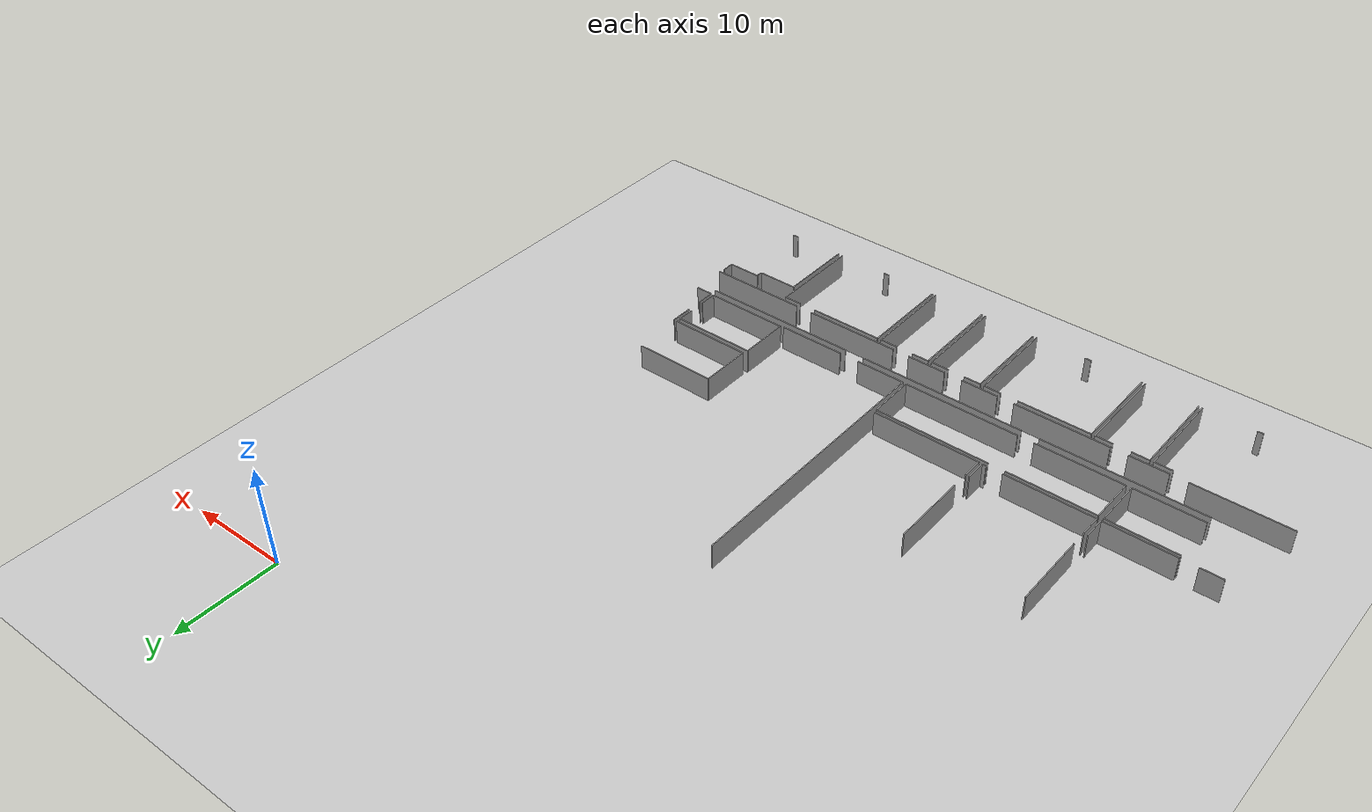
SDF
<sdf version="1.6">
 <world name="default">
  <model name="ground_plane">
   <static>1</static>
   <link name="link">
    <collision name="collision">
     <geometry><plane><normal>0 0 1</normal><size>100 100</size></plane></geometry>
     <surface><friction><ode><mu>100</mu><mu2>50</mu2></ode></friction></surface>
    </collision>
    <visual name="visual">
     <cast_shadows>0</cast_shadows>
     <geometry><plane><normal>0 0 1</normal><size>100 100</size></plane></geometry>
     <material>
      <script><uri>file://media/materials/scripts/gazebo.material</uri><name>Gazebo/Grey</name></script>
     </material>
    </visual>
   </link>
  </model>
  <model name="0510045904_A_40_1_102">
   <static>1</static>
   <link name="Wall_365">
    <collision name="Wall_365_Collision">
     <geometry><box><size>6.9133012556 0.1 2.5</size></box></geometry>
     <pose>3.4566506278 0 1.25 0 0 0</pose>
    </collision>
    <visual name="Wall_365_Visual">
     <pose>3.4566506278 0 1.25 0 0 0</pose>
     <geometry><box><size>6.9133012556 0.1 2.5</size></box></geometry>
     <material>
      <script><uri>file://media/materials/scripts/gazebo.material</uri><name>Gazebo/Grey</name></script>
      <ambient>1 1 1 1</ambient>
     </material>
    </visual>
    <pose>33.7816598322 -106.075894727 0 0 0 3.14159265359</pose>
   </link>
   <link name="Wall_366">
    <collision name="Wall_366_Collision">
     <geometry><box><size>2.19000342783 0.1 2.5</size></box></geometry>
     <pose>1.09500171392 0 1.25 0 0 0</pose>
    </collision>
    <visual name="Wall_366_Visual">
     <pose>1.09500171392 0 1.25 0 0 0</pose>
     <geometry><box><size>2.19000342783 0.1 2.5</size></box></geometry>
     <material>
      <script><uri>file://media/materials/scripts/gazebo.material</uri><name>Gazebo/Grey</name></script>
      <ambient>1 1 1 1</ambient>
     </material>
    </visual>
    <pose>25.1747559257 -106.075894727 0 0 0 3.14159265359</pose>
   </link>
   <link name="Wall_375">
    <collision name="Wall_375_Collision">
     <geometry><box><size>2.20194264453 0.1 2.5</size></box></geometry>
     <pose>1.10097132227 0 1.25 0 0 0</pose>
    </collision>
    <visual name="Wall_375_Visual">
     <pose>1.10097132227 0 1.25 0 0 0</pose>
     <geometry><box><size>2.20194264453 0.1 2.5</size></box></geometry>
     <material>
      <script><uri>file://media/materials/scripts/gazebo.material</uri><name>Gazebo/Grey</name></script>
      <ambient>1 1 1 1</ambient>
     </material>
    </visual>
    <pose>33.7768354768 -103.873957368 0 0 0 -1.56860537089</pose>
   </link>
   <link name="Wall_378">
    <collision name="Wall_378_Collision">
     <geometry><box><size>6.85413942387 0.1 2.5</size></box></geometry>
     <pose>3.42706971194 0 1.25 0 0 0</pose>
    </collision>
    <visual name="Wall_378_Visual">
     <pose>3.42706971194 0 1.25 0 0 0</pose>
     <geometry><box><size>6.85413942387 0.1 2.5</size></box></geometry>
     <material>
      <script><uri>file://media/materials/scripts/gazebo.material</uri><name>Gazebo/Grey</name></script>
      <ambient>1 1 1 1</ambient>
     </material>
    </visual>
    <pose>26.8650577018 -106.42070918 0 0 0 0.0</pose>
   </link>
   <link name="Wall_379">
    <collision name="Wall_379_Collision">
     <geometry><box><size>4.82105450252 0.1 2.5</size></box></geometry>
     <pose>2.41052725126 0 1.25 0 0 0</pose>
    </collision>
    <visual name="Wall_379_Visual">
     <pose>2.41052725126 0 1.25 0 0 0</pose>
     <geometry><box><size>4.82105450252 0.1 2.5</size></box></geometry>
     <material>
      <script><uri>file://media/materials/scripts/gazebo.material</uri><name>Gazebo/Grey</name></script>
      <ambient>1 1 1 1</ambient>
     </material>
    </visual>
    <pose>33.7191971257 -106.42070918 0 0 0 -1.57079632679</pose>
   </link>
   <link name="Wall_380">
    <collision name="Wall_380_Collision">
     <geometry><box><size>6.77745756472 0.1 2.5</size></box></geometry>
     <pose>3.38872878236 0 1.25 0 0 0</pose>
    </collision>
    <visual name="Wall_380_Visual">
     <pose>3.38872878236 0 1.25 0 0 0</pose>
     <geometry><box><size>6.77745756472 0.1 2.5</size></box></geometry>
     <material>
      <script><uri>file://media/materials/scripts/gazebo.material</uri><name>Gazebo/Grey</name></script>
      <ambient>1 1 1 1</ambient>
     </material>
    </visual>
    <pose>33.7191971257 -111.241763683 0 0 0 3.14159265359</pose>
   </link>
   <link name="Wall_387">
    <collision name="Wall_387_Collision">
     <geometry><box><size>2.17045209288 0.1 2.5</size></box></geometry>
     <pose>1.08522604644 0 1.25 0 0 0</pose>
    </collision>
    <visual name="Wall_387_Visual">
     <pose>1.08522604644 0 1.25 0 0 0</pose>
     <geometry><box><size>2.17045209288 0.1 2.5</size></box></geometry>
     <material>
      <script><uri>file://media/materials/scripts/gazebo.material</uri><name>Gazebo/Grey</name></script>
      <ambient>1 1 1 1</ambient>
     </material>
    </visual>
    <pose>34.158213465 -106.086305179 0 0 0 1.57079632679</pose>
   </link>
   <link name="Wall_388">
    <collision name="Wall_388_Collision">
     <geometry><box><size>7.57728490358 0.1 2.5</size></box></geometry>
     <pose>3.78864245179 0 1.25 0 0 0</pose>
    </collision>
    <visual name="Wall_388_Visual">
     <pose>3.78864245179 0 1.25 0 0 0</pose>
     <geometry><box><size>7.57728490358 0.1 2.5</size></box></geometry>
     <material>
      <script><uri>file://media/materials/scripts/gazebo.material</uri><name>Gazebo/Grey</name></script>
      <ambient>1 1 1 1</ambient>
     </material>
    </visual>
    <pose>34.158213465 -102.317467975 0 0 0 1.57079632679</pose>
   </link>
   <link name="Wall_394">
    <collision name="Wall_394_Collision">
     <geometry><box><size>2.09275457996 0.1 2.5</size></box></geometry>
     <pose>1.04637728998 0 1.25 0 0 0</pose>
    </collision>
    <visual name="Wall_394_Visual">
     <pose>1.04637728998 0 1.25 0 0 0</pose>
     <geometry><box><size>2.09275457996 0.1 2.5</size></box></geometry>
     <material>
      <script><uri>file://media/materials/scripts/gazebo.material</uri><name>Gazebo/Grey</name></script>
      <ambient>1 1 1 1</ambient>
     </material>
    </visual>
    <pose>45.0104739294 -103.965112293 0 0 0 -1.57079632679</pose>
   </link>
   <link name="Wall_395">
    <collision name="Wall_395_Collision">
     <geometry><box><size>0.387217997385 0.1 2.5</size></box></geometry>
     <pose>0.193608998692 0 1.25 0 0 0</pose>
    </collision>
    <visual name="Wall_395_Visual">
     <pose>0.193608998692 0 1.25 0 0 0</pose>
     <geometry><box><size>0.387217997385 0.1 2.5</size></box></geometry>
     <material>
      <script><uri>file://media/materials/scripts/gazebo.material</uri><name>Gazebo/Grey</name></script>
      <ambient>1 1 1 1</ambient>
     </material>
    </visual>
    <pose>45.0104739294 -106.057866873 0 0 0 3.14159265359</pose>
   </link>
   <link name="Wall_396">
    <collision name="Wall_396_Collision">
     <geometry><box><size>8.85781603724 0.1 2.5</size></box></geometry>
     <pose>4.42890801862 0 1.25 0 0 0</pose>
    </collision>
    <visual name="Wall_396_Visual">
     <pose>4.42890801862 0 1.25 0 0 0</pose>
     <geometry><box><size>8.85781603724 0.1 2.5</size></box></geometry>
     <material>
      <script><uri>file://media/materials/scripts/gazebo.material</uri><name>Gazebo/Grey</name></script>
      <ambient>1 1 1 1</ambient>
     </material>
    </visual>
    <pose>43.0159838511 -106.057866873 0 0 0 -3.13838211567</pose>
   </link>
   <link name="Wall_397">
    <collision name="Wall_397_Collision">
     <geometry><box><size>10.7659298945 0.1 2.5</size></box></geometry>
     <pose>5.38296494725 0 1.25 0 0 0</pose>
    </collision>
    <visual name="Wall_397_Visual">
     <pose>5.38296494725 0 1.25 0 0 0</pose>
     <geometry><box><size>10.7659298945 0.1 2.5</size></box></geometry>
     <material>
      <script><uri>file://media/materials/scripts/gazebo.material</uri><name>Gazebo/Grey</name></script>
      <ambient>1 1 1 1</ambient>
     </material>
    </visual>
    <pose>56.1318826412 -106.108395648 0 0 0 3.14159265359</pose>
   </link>
   <link name="Wall_398">
    <collision name="Wall_398_Collision">
     <geometry><box><size>2.08209021545 0.1 2.5</size></box></geometry>
     <pose>1.04104510772 0 1.25 0 0 0</pose>
    </collision>
    <visual name="Wall_398_Visual">
     <pose>1.04104510772 0 1.25 0 0 0</pose>
     <geometry><box><size>2.08209021545 0.1 2.5</size></box></geometry>
     <material>
      <script><uri>file://media/materials/scripts/gazebo.material</uri><name>Gazebo/Grey</name></script>
      <ambient>1 1 1 1</ambient>
     </material>
    </visual>
    <pose>45.3659527467 -106.108395648 0 0 0 1.57079632679</pose>
   </link>
   <link name="Wall_399">
    <collision name="Wall_399_Collision">
     <geometry><box><size>7.64152500413 0.1 2.5</size></box></geometry>
     <pose>3.82076250206 0 1.25 0 0 0</pose>
    </collision>
    <visual name="Wall_399_Visual">
     <pose>3.82076250206 0 1.25 0 0 0</pose>
     <geometry><box><size>7.64152500413 0.1 2.5</size></box></geometry>
     <material>
      <script><uri>file://media/materials/scripts/gazebo.material</uri><name>Gazebo/Grey</name></script>
      <ambient>1 1 1 1</ambient>
     </material>
    </visual>
    <pose>45.3659527467 -102.325085378 0 0 0 1.57079632679</pose>
   </link>
   <link name="Wall_404">
    <collision name="Wall_404_Collision">
     <geometry><box><size>11.563218099 0.1 2.5</size></box></geometry>
     <pose>5.78160904948 0 1.25 0 0 0</pose>
    </collision>
    <visual name="Wall_404_Visual">
     <pose>5.78160904948 0 1.25 0 0 0</pose>
     <geometry><box><size>11.563218099 0.1 2.5</size></box></geometry>
     <material>
      <script><uri>file://media/materials/scripts/gazebo.material</uri><name>Gazebo/Grey</name></script>
      <ambient>1 1 1 1</ambient>
     </material>
    </visual>
    <pose>56.1852044638 -111.223481915 0 0 0 3.14159265359</pose>
   </link>
   <link name="Wall_405">
    <collision name="Wall_405_Collision">
     <geometry><box><size>8.76001371133 0.1 2.5</size></box></geometry>
     <pose>4.38000685566 0 1.25 0 0 0</pose>
    </collision>
    <visual name="Wall_405_Visual">
     <pose>4.38000685566 0 1.25 0 0 0</pose>
     <geometry><box><size>8.76001371133 0.1 2.5</size></box></geometry>
     <material>
      <script><uri>file://media/materials/scripts/gazebo.material</uri><name>Gazebo/Grey</name></script>
      <ambient>1 1 1 1</ambient>
     </material>
    </visual>
    <pose>42.9867838054 -111.223481915 0 0 0 3.14159265359</pose>
   </link>
   <link name="Wall_406">
    <collision name="Wall_406_Collision">
     <geometry><box><size>4.75859179606 0.1 2.5</size></box></geometry>
     <pose>2.37929589803 0 1.25 0 0 0</pose>
    </collision>
    <visual name="Wall_406_Visual">
     <pose>2.37929589803 0 1.25 0 0 0</pose>
     <geometry><box><size>4.75859179606 0.1 2.5</size></box></geometry>
     <material>
      <script><uri>file://media/materials/scripts/gazebo.material</uri><name>Gazebo/Grey</name></script>
      <ambient>1 1 1 1</ambient>
     </material>
    </visual>
    <pose>34.2267700941 -111.223481915 0 0 0 1.57079632679</pose>
   </link>
   <link name="Wall_407">
    <collision name="Wall_407_Collision">
     <geometry><box><size>8.77448677746 0.1 2.5</size></box></geometry>
     <pose>4.38724338873 0 1.25 0 0 0</pose>
    </collision>
    <visual name="Wall_407_Visual">
     <pose>4.38724338873 0 1.25 0 0 0</pose>
     <geometry><box><size>8.77448677746 0.1 2.5</size></box></geometry>
     <material>
      <script><uri>file://media/materials/scripts/gazebo.material</uri><name>Gazebo/Grey</name></script>
      <ambient>1 1 1 1</ambient>
     </material>
    </visual>
    <pose>34.2267700941 -106.464890119 0 0 0 0.0</pose>
   </link>
   <link name="Wall_408">
    <collision name="Wall_408_Collision">
     <geometry><box><size>11.476887529 0.1 2.5</size></box></geometry>
     <pose>5.73844376452 0 1.25 0 0 0</pose>
    </collision>
    <visual name="Wall_408_Visual">
     <pose>5.73844376452 0 1.25 0 0 0</pose>
     <geometry><box><size>11.476887529 0.1 2.5</size></box></geometry>
     <material>
      <script><uri>file://media/materials/scripts/gazebo.material</uri><name>Gazebo/Grey</name></script>
      <ambient>1 1 1 1</ambient>
     </material>
    </visual>
    <pose>44.6803864563 -106.464890119 0 0 0 0.0</pose>
   </link>
   <link name="Wall_409">
    <collision name="Wall_409_Collision">
     <geometry><box><size>4.7586737641 0.1 2.5</size></box></geometry>
     <pose>2.37933688205 0 1.25 0 0 0</pose>
    </collision>
    <visual name="Wall_409_Visual">
     <pose>2.37933688205 0 1.25 0 0 0</pose>
     <geometry><box><size>4.7586737641 0.1 2.5</size></box></geometry>
     <material>
      <script><uri>file://media/materials/scripts/gazebo.material</uri><name>Gazebo/Grey</name></script>
      <ambient>1 1 1 1</ambient>
     </material>
    </visual>
    <pose>56.1572739853 -106.464890119 0 0 0 -1.56492691018</pose>
   </link>
   <link name="Wall_410">
    <collision name="Wall_410_Collision">
     <geometry><box><size>27.1969225691 0.1 2.5</size></box></geometry>
     <pose>13.5984612845 0 1.25 0 0 0</pose>
    </collision>
    <visual name="Wall_410_Visual">
     <pose>13.5984612845 0 1.25 0 0 0</pose>
     <geometry><box><size>27.1969225691 0.1 2.5</size></box></geometry>
     <material>
      <script><uri>file://media/materials/scripts/gazebo.material</uri><name>Gazebo/Grey</name></script>
      <ambient>1 1 1 1</ambient>
     </material>
    </visual>
    <pose>56.5691215865 -111.264361979 0 0 0 1.57079632679</pose>
   </link>
   <link name="Wall_417">
    <collision name="Wall_417_Collision">
     <geometry><box><size>6.60657381899 0.1 2.5</size></box></geometry>
     <pose>3.30328690949 0 1.25 0 0 0</pose>
    </collision>
    <visual name="Wall_417_Visual">
     <pose>3.30328690949 0 1.25 0 0 0</pose>
     <geometry><box><size>6.60657381899 0.1 2.5</size></box></geometry>
     <material>
      <script><uri>file://media/materials/scripts/gazebo.material</uri><name>Gazebo/Grey</name></script>
      <ambient>1 1 1 1</ambient>
     </material>
    </visual>
    <pose>70.1019462465 -111.288229842 0 0 0 3.14159265359</pose>
   </link>
   <link name="Wall_418">
    <collision name="Wall_418_Collision">
     <geometry><box><size>4.93486544378 0.1 2.5</size></box></geometry>
     <pose>2.46743272189 0 1.25 0 0 0</pose>
    </collision>
    <visual name="Wall_418_Visual">
     <pose>2.46743272189 0 1.25 0 0 0</pose>
     <geometry><box><size>4.93486544378 0.1 2.5</size></box></geometry>
     <material>
      <script><uri>file://media/materials/scripts/gazebo.material</uri><name>Gazebo/Grey</name></script>
      <ambient>1 1 1 1</ambient>
     </material>
    </visual>
    <pose>61.5039293105 -111.288229842 0 0 0 3.13675605637</pose>
   </link>
   <link name="Wall_437">
    <collision name="Wall_437_Collision">
     <geometry><box><size>1.69157134333 0.1 2.5</size></box></geometry>
     <pose>0.845785671665 0 1.25 0 0 0</pose>
    </collision>
    <visual name="Wall_437_Visual">
     <pose>0.845785671665 0 1.25 0 0 0</pose>
     <geometry><box><size>1.69157134333 0.1 2.5</size></box></geometry>
     <material>
      <script><uri>file://media/materials/scripts/gazebo.material</uri><name>Gazebo/Grey</name></script>
      <ambient>1 1 1 1</ambient>
     </material>
    </visual>
    <pose>80.6413853517 -111.300417688 0 0 0 3.14159265359</pose>
   </link>
   <link name="Wall_438">
    <collision name="Wall_438_Collision">
     <geometry><box><size>1.76622189496 0.1 2.5</size></box></geometry>
     <pose>0.883110947478 0 1.25 0 0 0</pose>
    </collision>
    <visual name="Wall_438_Visual">
     <pose>0.883110947478 0 1.25 0 0 0</pose>
     <geometry><box><size>1.76622189496 0.1 2.5</size></box></geometry>
     <material>
      <script><uri>file://media/materials/scripts/gazebo.material</uri><name>Gazebo/Grey</name></script>
      <ambient>1 1 1 1</ambient>
     </material>
    </visual>
    <pose>78.9498140084 -111.300417688 0 0 0 1.57079632679</pose>
   </link>
   <link name="Wall_439">
    <collision name="Wall_439_Collision">
     <geometry><box><size>2.18568689934 0.1 2.5</size></box></geometry>
     <pose>1.09284344967 0 1.25 0 0 0</pose>
    </collision>
    <visual name="Wall_439_Visual">
     <pose>1.09284344967 0 1.25 0 0 0</pose>
     <geometry><box><size>2.18568689934 0.1 2.5</size></box></geometry>
     <material>
      <script><uri>file://media/materials/scripts/gazebo.material</uri><name>Gazebo/Grey</name></script>
      <ambient>1 1 1 1</ambient>
     </material>
    </visual>
    <pose>78.9498140084 -107.922099356 0 0 0 1.57079632679</pose>
   </link>
   <link name="Wall_443">
    <collision name="Wall_443_Collision">
     <geometry><box><size>8.05032564399 0.1 2.5</size></box></geometry>
     <pose>4.02516282199 0 1.25 0 0 0</pose>
    </collision>
    <visual name="Wall_443_Visual">
     <pose>4.02516282199 0 1.25 0 0 0</pose>
     <geometry><box><size>8.05032564399 0.1 2.5</size></box></geometry>
     <material>
      <script><uri>file://media/materials/scripts/gazebo.material</uri><name>Gazebo/Grey</name></script>
      <ambient>1 1 1 1</ambient>
     </material>
    </visual>
    <pose>78.6311526401 -100.663221908 0 0 0 3.14159265359</pose>
   </link>
   <link name="Wall_444">
    <collision name="Wall_444_Collision">
     <geometry><box><size>5.02316960148 0.1 2.5</size></box></geometry>
     <pose>2.51158480074 0 1.25 0 0 0</pose>
    </collision>
    <visual name="Wall_444_Visual">
     <pose>2.51158480074 0 1.25 0 0 0</pose>
     <geometry><box><size>5.02316960148 0.1 2.5</size></box></geometry>
     <material>
      <script><uri>file://media/materials/scripts/gazebo.material</uri><name>Gazebo/Grey</name></script>
      <ambient>1 1 1 1</ambient>
     </material>
    </visual>
    <pose>70.5808269961 -100.663221908 0 0 0 -1.57079632679</pose>
   </link>
   <link name="Wall_445">
    <collision name="Wall_445_Collision">
     <geometry><box><size>8.05041217271 0.1 2.5</size></box></geometry>
     <pose>4.02520608635 0 1.25 0 0 0</pose>
    </collision>
    <visual name="Wall_445_Visual">
     <pose>4.02520608635 0 1.25 0 0 0</pose>
     <geometry><box><size>8.05041217271 0.1 2.5</size></box></geometry>
     <material>
      <script><uri>file://media/materials/scripts/gazebo.material</uri><name>Gazebo/Grey</name></script>
      <ambient>1 1 1 1</ambient>
     </material>
    </visual>
    <pose>70.5808269961 -105.686391509 0 0 0 -0.00463645944354</pose>
   </link>
   <link name="Wall_446">
    <collision name="Wall_446_Collision">
     <geometry><box><size>1.6895400358 0.1 2.5</size></box></geometry>
     <pose>0.844770017901 0 1.25 0 0 0</pose>
    </collision>
    <visual name="Wall_446_Visual">
     <pose>0.844770017901 0 1.25 0 0 0</pose>
     <geometry><box><size>1.6895400358 0.1 2.5</size></box></geometry>
     <material>
      <script><uri>file://media/materials/scripts/gazebo.material</uri><name>Gazebo/Grey</name></script>
      <ambient>1 1 1 1</ambient>
     </material>
    </visual>
    <pose>78.6268361116 -111.241763683 0 0 0 1.57079632679</pose>
   </link>
   <link name="Wall_447">
    <collision name="Wall_447_Collision">
     <geometry><box><size>1.69995048688 0.1 2.5</size></box></geometry>
     <pose>0.84997524344 0 1.25 0 0 0</pose>
    </collision>
    <visual name="Wall_447_Visual">
     <pose>0.84997524344 0 1.25 0 0 0</pose>
     <geometry><box><size>1.69995048688 0.1 2.5</size></box></geometry>
     <material>
      <script><uri>file://media/materials/scripts/gazebo.material</uri><name>Gazebo/Grey</name></script>
      <ambient>1 1 1 1</ambient>
     </material>
    </visual>
    <pose>78.6268361116 -107.922099356 0 0 0 1.57079632679</pose>
   </link>
   <link name="Wall_448">
    <collision name="Wall_448_Collision">
     <geometry><box><size>8.20292762197 0.1 2.5</size></box></geometry>
     <pose>4.10146381099 0 1.25 0 0 0</pose>
    </collision>
    <visual name="Wall_448_Visual">
     <pose>4.10146381099 0 1.25 0 0 0</pose>
     <geometry><box><size>8.20292762197 0.1 2.5</size></box></geometry>
     <material>
      <script><uri>file://media/materials/scripts/gazebo.material</uri><name>Gazebo/Grey</name></script>
      <ambient>1 1 1 1</ambient>
     </material>
    </visual>
    <pose>78.6268361116 -106.222148869 0 0 0 3.14159265359</pose>
   </link>
   <link name="Wall_449">
    <collision name="Wall_449_Collision">
     <geometry><box><size>4.96781647136 0.1 2.5</size></box></geometry>
     <pose>2.48390823568 0 1.25 0 0 0</pose>
    </collision>
    <visual name="Wall_449_Visual">
     <pose>2.48390823568 0 1.25 0 0 0</pose>
     <geometry><box><size>4.96781647136 0.1 2.5</size></box></geometry>
     <material>
      <script><uri>file://media/materials/scripts/gazebo.material</uri><name>Gazebo/Grey</name></script>
      <ambient>1 1 1 1</ambient>
     </material>
    </visual>
    <pose>70.4239084896 -106.222148869 0 0 0 -1.57079632679</pose>
   </link>
   <link name="Wall_450">
    <collision name="Wall_450_Collision">
     <geometry><box><size>8.20309116368 0.1 2.5</size></box></geometry>
     <pose>4.10154558184 0 1.25 0 0 0</pose>
    </collision>
    <visual name="Wall_450_Visual">
     <pose>4.10154558184 0 1.25 0 0 0</pose>
     <geometry><box><size>8.20309116368 0.1 2.5</size></box></geometry>
     <material>
      <script><uri>file://media/materials/scripts/gazebo.material</uri><name>Gazebo/Grey</name></script>
      <ambient>1 1 1 1</ambient>
     </material>
    </visual>
    <pose>70.4239084896 -111.189965341 0 0 0 -0.00631453255145</pose>
   </link>
   <link name="Wall_653">
    <collision name="Wall_653_Collision">
     <geometry><box><size>15.9965467772 0.1 2.5</size></box></geometry>
     <pose>7.9982733886 0 1.25 0 0 0</pose>
    </collision>
    <visual name="Wall_653_Visual">
     <pose>7.9982733886 0 1.25 0 0 0</pose>
     <geometry><box><size>15.9965467772 0.1 2.5</size></box></geometry>
     <material>
      <script><uri>file://media/materials/scripts/gazebo.material</uri><name>Gazebo/Grey</name></script>
      <ambient>1 1 1 1</ambient>
     </material>
    </visual>
    <pose>26.9318369368 -112.001472698 0 0 0 0.0</pose>
   </link>
   <link name="Wall_654">
    <collision name="Wall_654_Collision">
     <geometry><box><size>16.7593027537 0.1 2.5</size></box></geometry>
     <pose>8.37965137685 0 1.25 0 0 0</pose>
    </collision>
    <visual name="Wall_654_Visual">
     <pose>8.37965137685 0 1.25 0 0 0</pose>
     <geometry><box><size>16.7593027537 0.1 2.5</size></box></geometry>
     <material>
      <script><uri>file://media/materials/scripts/gazebo.material</uri><name>Gazebo/Grey</name></script>
      <ambient>1 1 1 1</ambient>
     </material>
    </visual>
    <pose>44.6819099369 -112.001472698 0 0 0 0.0</pose>
   </link>
   <link name="Wall_655">
    <collision name="Wall_655_Collision">
     <geometry><box><size>15.5707339368 0.1 2.5</size></box></geometry>
     <pose>7.7853669684 0 1.25 0 0 0</pose>
    </collision>
    <visual name="Wall_655_Visual">
     <pose>7.7853669684 0 1.25 0 0 0</pose>
     <geometry><box><size>15.5707339368 0.1 2.5</size></box></geometry>
     <material>
      <script><uri>file://media/materials/scripts/gazebo.material</uri><name>Gazebo/Grey</name></script>
      <ambient>1 1 1 1</ambient>
     </material>
    </visual>
    <pose>63.4209757894 -112.001472698 0 0 0 0.0</pose>
   </link>
   <link name="Wall_675">
    <collision name="Wall_675_Collision">
     <geometry><box><size>9.53292622545 0.1 2.5</size></box></geometry>
     <pose>4.76646311272 0 1.25 0 0 0</pose>
    </collision>
    <visual name="Wall_675_Visual">
     <pose>4.76646311272 0 1.25 0 0 0</pose>
     <geometry><box><size>9.53292622545 0.1 2.5</size></box></geometry>
     <material>
      <script><uri>file://media/materials/scripts/gazebo.material</uri><name>Gazebo/Grey</name></script>
      <ambient>1 1 1 1</ambient>
     </material>
    </visual>
    <pose>80.7378724593 -114.833115391 0 0 0 3.14159265359</pose>
   </link>
   <link name="Wall_676">
    <collision name="Wall_676_Collision">
     <geometry><box><size>9.45015044371 0.1 2.5</size></box></geometry>
     <pose>4.72507522186 0 1.25 0 0 0</pose>
    </collision>
    <visual name="Wall_676_Visual">
     <pose>4.72507522186 0 1.25 0 0 0</pose>
     <geometry><box><size>9.45015044371 0.1 2.5</size></box></geometry>
     <material>
      <script><uri>file://media/materials/scripts/gazebo.material</uri><name>Gazebo/Grey</name></script>
      <ambient>1 1 1 1</ambient>
     </material>
    </visual>
    <pose>69.4966166034 -114.833115391 0 0 0 3.14159265359</pose>
   </link>
   <link name="Wall_677">
    <collision name="Wall_677_Collision">
     <geometry><box><size>3.91026698998 0.1 2.5</size></box></geometry>
     <pose>1.95513349499 0 1.25 0 0 0</pose>
    </collision>
    <visual name="Wall_677_Visual">
     <pose>1.95513349499 0 1.25 0 0 0</pose>
     <geometry><box><size>3.91026698998 0.1 2.5</size></box></geometry>
     <material>
      <script><uri>file://media/materials/scripts/gazebo.material</uri><name>Gazebo/Grey</name></script>
      <ambient>1 1 1 1</ambient>
     </material>
    </visual>
    <pose>58.315538233 -114.833115391 0 0 0 3.14159265359</pose>
   </link>
   <link name="Wall_678">
    <collision name="Wall_678_Collision">
     <geometry><box><size>3.73760585017 0.1 2.5</size></box></geometry>
     <pose>1.86880292508 0 1.25 0 0 0</pose>
    </collision>
    <visual name="Wall_678_Visual">
     <pose>1.86880292508 0 1.25 0 0 0</pose>
     <geometry><box><size>3.73760585017 0.1 2.5</size></box></geometry>
     <material>
      <script><uri>file://media/materials/scripts/gazebo.material</uri><name>Gazebo/Grey</name></script>
      <ambient>1 1 1 1</ambient>
     </material>
    </visual>
    <pose>52.5643987965 -114.833115391 0 0 0 3.14159265359</pose>
   </link>
   <link name="Wall_679">
    <collision name="Wall_679_Collision">
     <geometry><box><size>9.53673492706 0.1 2.5</size></box></geometry>
     <pose>4.76836746353 0 1.25 0 0 0</pose>
    </collision>
    <visual name="Wall_679_Visual">
     <pose>4.76836746353 0 1.25 0 0 0</pose>
     <geometry><box><size>9.53673492706 0.1 2.5</size></box></geometry>
     <material>
      <script><uri>file://media/materials/scripts/gazebo.material</uri><name>Gazebo/Grey</name></script>
      <ambient>1 1 1 1</ambient>
     </material>
    </visual>
    <pose>47.1331902954 -114.833115391 0 0 0 3.14159265359</pose>
   </link>
   <link name="Wall_680">
    <collision name="Wall_680_Collision">
     <geometry><box><size>3.85694516739 0.1 2.5</size></box></geometry>
     <pose>1.9284725837 0 1.25 0 0 0</pose>
    </collision>
    <visual name="Wall_680_Visual">
     <pose>1.9284725837 0 1.25 0 0 0</pose>
     <geometry><box><size>3.85694516739 0.1 2.5</size></box></geometry>
     <material>
      <script><uri>file://media/materials/scripts/gazebo.material</uri><name>Gazebo/Grey</name></script>
      <ambient>1 1 1 1</ambient>
     </material>
    </visual>
    <pose>35.8949814008 -114.833115391 0 0 0 3.14159265359</pose>
   </link>
   <link name="Wall_681">
    <collision name="Wall_681_Collision">
     <geometry><box><size>9.45802176038 0.1 2.5</size></box></geometry>
     <pose>4.72901088019 0 1.25 0 0 0</pose>
    </collision>
    <visual name="Wall_681_Visual">
     <pose>4.72901088019 0 1.25 0 0 0</pose>
     <geometry><box><size>9.45802176038 0.1 2.5</size></box></geometry>
     <material>
      <script><uri>file://media/materials/scripts/gazebo.material</uri><name>Gazebo/Grey</name></script>
      <ambient>1 1 1 1</ambient>
     </material>
    </visual>
    <pose>30.2944126347 -114.833115391 0 0 0 3.14159265359</pose>
   </link>
   <link name="Wall_740">
    <collision name="Wall_740_Collision">
     <geometry><box><size>0.584254827529 0.1 2.5</size></box></geometry>
     <pose>0.292127413765 0 1.25 0 0 0</pose>
    </collision>
    <visual name="Wall_740_Visual">
     <pose>0.292127413765 0 1.25 0 0 0</pose>
     <geometry><box><size>0.584254827529 0.1 2.5</size></box></geometry>
     <material>
      <script><uri>file://media/materials/scripts/gazebo.material</uri><name>Gazebo/Grey</name></script>
      <ambient>1 1 1 1</ambient>
     </material>
    </visual>
    <pose>28.6487996242 -124.75148222 0 0 0 3.14159265359</pose>
   </link>
   <link name="Wall_743">
    <collision name="Wall_743_Collision">
     <geometry><box><size>1.81141848744 0.1 2.5</size></box></geometry>
     <pose>0.905709243719 0 1.25 0 0 0</pose>
    </collision>
    <visual name="Wall_743_Visual">
     <pose>0.905709243719 0 1.25 0 0 0</pose>
     <geometry><box><size>1.81141848744 0.1 2.5</size></box></geometry>
     <material>
      <script><uri>file://media/materials/scripts/gazebo.material</uri><name>Gazebo/Grey</name></script>
      <ambient>1 1 1 1</ambient>
     </material>
    </visual>
    <pose>31.9809057092 -115.404420633 0 0 0 0.0</pose>
   </link>
   <link name="Wall_744">
    <collision name="Wall_744_Collision">
     <geometry><box><size>9.34707441963 0.1 2.5</size></box></geometry>
     <pose>4.67353720982 0 1.25 0 0 0</pose>
    </collision>
    <visual name="Wall_744_Visual">
     <pose>4.67353720982 0 1.25 0 0 0</pose>
     <geometry><box><size>9.34707441963 0.1 2.5</size></box></geometry>
     <material>
      <script><uri>file://media/materials/scripts/gazebo.material</uri><name>Gazebo/Grey</name></script>
      <ambient>1 1 1 1</ambient>
     </material>
    </visual>
    <pose>33.7923241967 -115.404420633 0 0 0 -1.56913925996</pose>
   </link>
   <link name="Wall_745">
    <collision name="Wall_745_Collision">
     <geometry><box><size>9.36585118133 0.1 2.5</size></box></geometry>
     <pose>4.68292559067 0 1.25 0 0 0</pose>
    </collision>
    <visual name="Wall_745_Visual">
     <pose>4.68292559067 0 1.25 0 0 0</pose>
     <geometry><box><size>9.36585118133 0.1 2.5</size></box></geometry>
     <material>
      <script><uri>file://media/materials/scripts/gazebo.material</uri><name>Gazebo/Grey</name></script>
      <ambient>1 1 1 1</ambient>
     </material>
    </visual>
    <pose>34.158213465 -124.75148222 0 0 0 1.57079632679</pose>
   </link>
   <link name="Wall_746">
    <collision name="Wall_746_Collision">
     <geometry><box><size>1.73651402237 0.1 2.5</size></box></geometry>
     <pose>0.868257011185 0 1.25 0 0 0</pose>
    </collision>
    <visual name="Wall_746_Visual">
     <pose>0.868257011185 0 1.25 0 0 0</pose>
     <geometry><box><size>1.73651402237 0.1 2.5</size></box></geometry>
     <material>
      <script><uri>file://media/materials/scripts/gazebo.material</uri><name>Gazebo/Grey</name></script>
      <ambient>1 1 1 1</ambient>
     </material>
    </visual>
    <pose>34.158213465 -115.385631038 0 0 0 0.0</pose>
   </link>
   <link name="Wall_747">
    <collision name="Wall_747_Collision">
     <geometry><box><size>1.74692447345 0.1 2.5</size></box></geometry>
     <pose>0.873462236723 0 1.25 0 0 0</pose>
    </collision>
    <visual name="Wall_747_Visual">
     <pose>0.873462236723 0 1.25 0 0 0</pose>
     <geometry><box><size>1.74692447345 0.1 2.5</size></box></geometry>
     <material>
      <script><uri>file://media/materials/scripts/gazebo.material</uri><name>Gazebo/Grey</name></script>
      <ambient>1 1 1 1</ambient>
     </material>
    </visual>
    <pose>37.6360658651 -115.385631038 0 0 0 0.0</pose>
   </link>
   <link name="Wall_748">
    <collision name="Wall_748_Collision">
     <geometry><box><size>9.36586441186 0.1 2.5</size></box></geometry>
     <pose>4.68293220593 0 1.25 0 0 0</pose>
    </collision>
    <visual name="Wall_748_Visual">
     <pose>4.68293220593 0 1.25 0 0 0</pose>
     <geometry><box><size>9.36586441186 0.1 2.5</size></box></geometry>
     <material>
      <script><uri>file://media/materials/scripts/gazebo.material</uri><name>Gazebo/Grey</name></script>
      <ambient>1 1 1 1</ambient>
     </material>
    </visual>
    <pose>39.3829903386 -115.385631038 0 0 0 -1.57247717974</pose>
   </link>
   <link name="Wall_749">
    <collision name="Wall_749_Collision">
     <geometry><box><size>0.634529688829 0.1 2.5</size></box></geometry>
     <pose>0.317264844415 0 1.25 0 0 0</pose>
    </collision>
    <visual name="Wall_749_Visual">
     <pose>0.317264844415 0 1.25 0 0 0</pose>
     <geometry><box><size>0.634529688829 0.1 2.5</size></box></geometry>
     <material>
      <script><uri>file://media/materials/scripts/gazebo.material</uri><name>Gazebo/Grey</name></script>
      <ambient>1 1 1 1</ambient>
     </material>
    </visual>
    <pose>45.4776746607 -124.784998794 0 0 0 3.14159265359</pose>
   </link>
   <link name="Wall_750">
    <collision name="Wall_750_Collision">
     <geometry><box><size>9.39936775553 0.1 2.5</size></box></geometry>
     <pose>4.69968387777 0 1.25 0 0 0</pose>
    </collision>
    <visual name="Wall_750_Visual">
     <pose>4.69968387777 0 1.25 0 0 0</pose>
     <geometry><box><size>9.39936775553 0.1 2.5</size></box></geometry>
     <material>
      <script><uri>file://media/materials/scripts/gazebo.material</uri><name>Gazebo/Grey</name></script>
      <ambient>1 1 1 1</ambient>
     </material>
    </visual>
    <pose>39.7179021672 -124.784998794 0 0 0 1.57079632679</pose>
   </link>
   <link name="Wall_751">
    <collision name="Wall_751_Collision">
     <geometry><box><size>7.34444627826 0.1 2.5</size></box></geometry>
     <pose>3.67222313913 0 1.25 0 0 0</pose>
    </collision>
    <visual name="Wall_751_Visual">
     <pose>3.67222313913 0 1.25 0 0 0</pose>
     <geometry><box><size>7.34444627826 0.1 2.5</size></box></geometry>
     <material>
      <script><uri>file://media/materials/scripts/gazebo.material</uri><name>Gazebo/Grey</name></script>
      <ambient>1 1 1 1</ambient>
     </material>
    </visual>
    <pose>39.7179021672 -115.385631038 0 0 0 0.0</pose>
   </link>
   <link name="Wall_752">
    <collision name="Wall_752_Collision">
     <geometry><box><size>1.76952276969 0.1 2.5</size></box></geometry>
     <pose>0.884761384844 0 1.25 0 0 0</pose>
    </collision>
    <visual name="Wall_752_Visual">
     <pose>0.884761384844 0 1.25 0 0 0</pose>
     <geometry><box><size>1.76952276969 0.1 2.5</size></box></geometry>
     <material>
      <script><uri>file://media/materials/scripts/gazebo.material</uri><name>Gazebo/Grey</name></script>
      <ambient>1 1 1 1</ambient>
     </material>
    </visual>
    <pose>48.800132035 -115.385631038 0 0 0 0.0</pose>
   </link>
   <link name="Wall_753">
    <collision name="Wall_753_Collision">
     <geometry><box><size>9.39936775553 0.1 2.5</size></box></geometry>
     <pose>4.69968387777 0 1.25 0 0 0</pose>
    </collision>
    <visual name="Wall_753_Visual">
     <pose>4.69968387777 0 1.25 0 0 0</pose>
     <geometry><box><size>9.39936775553 0.1 2.5</size></box></geometry>
     <material>
      <script><uri>file://media/materials/scripts/gazebo.material</uri><name>Gazebo/Grey</name></script>
      <ambient>1 1 1 1</ambient>
     </material>
    </visual>
    <pose>50.5696548047 -115.385631038 0 0 0 -1.57079632679</pose>
   </link>
   <link name="Wall_754">
    <collision name="Wall_754_Collision">
     <geometry><box><size>9.36432770069 0.1 2.5</size></box></geometry>
     <pose>4.68216385034 0 1.25 0 0 0</pose>
    </collision>
    <visual name="Wall_754_Visual">
     <pose>4.68216385034 0 1.25 0 0 0</pose>
     <geometry><box><size>9.36432770069 0.1 2.5</size></box></geometry>
     <material>
      <script><uri>file://media/materials/scripts/gazebo.material</uri><name>Gazebo/Grey</name></script>
      <ambient>1 1 1 1</ambient>
     </material>
    </visual>
    <pose>50.9624588978 -124.771287468 0 0 0 1.57079632679</pose>
   </link>
   <link name="Wall_755">
    <collision name="Wall_755_Collision">
     <geometry><box><size>1.71086876484 0.1 2.5</size></box></geometry>
     <pose>0.855434382419 0 1.25 0 0 0</pose>
    </collision>
    <visual name="Wall_755_Visual">
     <pose>0.855434382419 0 1.25 0 0 0</pose>
     <geometry><box><size>1.71086876484 0.1 2.5</size></box></geometry>
     <material>
      <script><uri>file://media/materials/scripts/gazebo.material</uri><name>Gazebo/Grey</name></script>
      <ambient>1 1 1 1</ambient>
     </material>
    </visual>
    <pose>50.9624588978 -115.406959767 0 0 0 0.0</pose>
   </link>
   <link name="Wall_756">
    <collision name="Wall_756_Collision">
     <geometry><box><size>1.81979763099 0.1 2.5</size></box></geometry>
     <pose>0.909898815494 0 1.25 0 0 0</pose>
    </collision>
    <visual name="Wall_756_Visual">
     <pose>0.909898815494 0 1.25 0 0 0</pose>
     <geometry><box><size>1.81979763099 0.1 2.5</size></box></geometry>
     <material>
      <script><uri>file://media/materials/scripts/gazebo.material</uri><name>Gazebo/Grey</name></script>
      <ambient>1 1 1 1</ambient>
     </material>
    </visual>
    <pose>54.3595668237 -115.406959767 0 0 0 0.0</pose>
   </link>
   <link name="Wall_757">
    <collision name="Wall_757_Collision">
     <geometry><box><size>9.36434093337 0.1 2.5</size></box></geometry>
     <pose>4.68217046668 0 1.25 0 0 0</pose>
    </collision>
    <visual name="Wall_757_Visual">
     <pose>4.68217046668 0 1.25 0 0 0</pose>
     <geometry><box><size>9.36434093337 0.1 2.5</size></box></geometry>
     <material>
      <script><uri>file://media/materials/scripts/gazebo.material</uri><name>Gazebo/Grey</name></script>
      <ambient>1 1 1 1</ambient>
     </material>
    </visual>
    <pose>56.1793644547 -115.406959767 0 0 0 -1.57247745319</pose>
   </link>
   <link name="Wall_758">
    <collision name="Wall_758_Collision">
     <geometry><box><size>9.37956250714 0.1 2.5</size></box></geometry>
     <pose>4.68978125357 0 1.25 0 0 0</pose>
    </collision>
    <visual name="Wall_758_Visual">
     <pose>4.68978125357 0 1.25 0 0 0</pose>
     <geometry><box><size>9.37956250714 0.1 2.5</size></box></geometry>
     <material>
      <script><uri>file://media/materials/scripts/gazebo.material</uri><name>Gazebo/Grey</name></script>
      <ambient>1 1 1 1</ambient>
     </material>
    </visual>
    <pose>56.5422067617 -124.758591796 0 0 0 1.57079632679</pose>
   </link>
   <link name="Wall_759">
    <collision name="Wall_759_Collision">
     <geometry><box><size>1.72965835947 0.1 2.5</size></box></geometry>
     <pose>0.864829179733 0 1.25 0 0 0</pose>
    </collision>
    <visual name="Wall_759_Visual">
     <pose>0.864829179733 0 1.25 0 0 0</pose>
     <geometry><box><size>1.72965835947 0.1 2.5</size></box></geometry>
     <material>
      <script><uri>file://media/materials/scripts/gazebo.material</uri><name>Gazebo/Grey</name></script>
      <ambient>1 1 1 1</ambient>
     </material>
    </visual>
    <pose>56.5422067617 -115.379029289 0 0 0 0.0</pose>
   </link>
   <link name="Wall_760">
    <collision name="Wall_760_Collision">
     <geometry><box><size>1.76723754872 0.1 2.5</size></box></geometry>
     <pose>0.88361877436 0 1.25 0 0 0</pose>
    </collision>
    <visual name="Wall_760_Visual">
     <pose>0.88361877436 0 1.25 0 0 0</pose>
     <geometry><box><size>1.76723754872 0.1 2.5</size></box></geometry>
     <material>
      <script><uri>file://media/materials/scripts/gazebo.material</uri><name>Gazebo/Grey</name></script>
      <ambient>1 1 1 1</ambient>
     </material>
    </visual>
    <pose>59.9842573667 -115.379029289 0 0 0 0.0</pose>
   </link>
   <link name="Wall_761">
    <collision name="Wall_761_Collision">
     <geometry><box><size>9.37960955387 0.1 2.5</size></box></geometry>
     <pose>4.68980477694 0 1.25 0 0 0</pose>
    </collision>
    <visual name="Wall_761_Visual">
     <pose>4.68980477694 0 1.25 0 0 0</pose>
     <geometry><box><size>9.37960955387 0.1 2.5</size></box></geometry>
     <material>
      <script><uri>file://media/materials/scripts/gazebo.material</uri><name>Gazebo/Grey</name></script>
      <ambient>1 1 1 1</ambient>
     </material>
    </visual>
    <pose>61.7514949154 -115.379029289 0 0 0 -1.56762903906</pose>
   </link>
   <link name="Wall_762">
    <collision name="Wall_762_Collision">
     <geometry><box><size>0.606091383447 0.1 2.5</size></box></geometry>
     <pose>0.303045691724 0 1.25 0 0 0</pose>
    </collision>
    <visual name="Wall_762_Visual">
     <pose>0.303045691724 0 1.25 0 0 0</pose>
     <geometry><box><size>0.606091383447 0.1 2.5</size></box></geometry>
     <material>
      <script><uri>file://media/materials/scripts/gazebo.material</uri><name>Gazebo/Grey</name></script>
      <ambient>1 1 1 1</ambient>
     </material>
    </visual>
    <pose>67.8408470552 -124.758591796 0 0 0 3.14159265359</pose>
   </link>
   <link name="Wall_763">
    <collision name="Wall_763_Collision">
     <geometry><box><size>9.38971904478 0.1 2.5</size></box></geometry>
     <pose>4.69485952239 0 1.25 0 0 0</pose>
    </collision>
    <visual name="Wall_763_Visual">
     <pose>4.69485952239 0 1.25 0 0 0</pose>
     <geometry><box><size>9.38971904478 0.1 2.5</size></box></geometry>
     <material>
      <script><uri>file://media/materials/scripts/gazebo.material</uri><name>Gazebo/Grey</name></script>
      <ambient>1 1 1 1</ambient>
     </material>
    </visual>
    <pose>62.1473459698 -124.758591796 0 0 0 1.57079632679</pose>
   </link>
   <link name="Wall_764">
    <collision name="Wall_764_Collision">
     <geometry><box><size>7.32134015514 0.1 2.5</size></box></geometry>
     <pose>3.66067007757 0 1.25 0 0 0</pose>
    </collision>
    <visual name="Wall_764_Visual">
     <pose>3.66067007757 0 1.25 0 0 0</pose>
     <geometry><box><size>7.32134015514 0.1 2.5</size></box></geometry>
     <material>
      <script><uri>file://media/materials/scripts/gazebo.material</uri><name>Gazebo/Grey</name></script>
      <ambient>1 1 1 1</ambient>
     </material>
    </visual>
    <pose>62.1473459698 -115.368872751 0 0 0 0.0</pose>
   </link>
   <link name="Wall_765">
    <collision name="Wall_765_Collision">
     <geometry><box><size>1.74311577183 0.1 2.5</size></box></geometry>
     <pose>0.871557885917 0 1.25 0 0 0</pose>
    </collision>
    <visual name="Wall_765_Visual">
     <pose>0.871557885917 0 1.25 0 0 0</pose>
     <geometry><box><size>1.74311577183 0.1 2.5</size></box></geometry>
     <material>
      <script><uri>file://media/materials/scripts/gazebo.material</uri><name>Gazebo/Grey</name></script>
      <ambient>1 1 1 1</ambient>
     </material>
    </visual>
    <pose>71.1790470629 -115.368872751 0 0 0 0.0</pose>
   </link>
   <link name="Wall_766">
    <collision name="Wall_766_Collision">
     <geometry><box><size>9.38973887445 0.1 2.5</size></box></geometry>
     <pose>4.69486943722 0 1.25 0 0 0</pose>
    </collision>
    <visual name="Wall_766_Visual">
     <pose>4.69486943722 0 1.25 0 0 0</pose>
     <geometry><box><size>9.38973887445 0.1 2.5</size></box></geometry>
     <material>
      <script><uri>file://media/materials/scripts/gazebo.material</uri><name>Gazebo/Grey</name></script>
      <ambient>1 1 1 1</ambient>
     </material>
    </visual>
    <pose>72.9221628347 -115.368872751 0 0 0 -1.57285148886</pose>
   </link>
   <link name="Wall_767">
    <collision name="Wall_767_Collision">
     <geometry><box><size>0.580700039357 0.1 2.5</size></box></geometry>
     <pose>0.290350019678 0 1.25 0 0 0</pose>
    </collision>
    <visual name="Wall_767_Visual">
     <pose>0.290350019678 0 1.25 0 0 0</pose>
     <geometry><box><size>0.580700039357 0.1 2.5</size></box></geometry>
     <material>
      <script><uri>file://media/materials/scripts/gazebo.material</uri><name>Gazebo/Grey</name></script>
      <ambient>1 1 1 1</ambient>
     </material>
    </visual>
    <pose>79.0155775896 -124.762400498 0 0 0 3.14159265359</pose>
   </link>
   <link name="Wall_768">
    <collision name="Wall_768_Collision">
     <geometry><box><size>7.5346274455 0.1 2.5</size></box></geometry>
     <pose>3.76731372275 0 1.25 0 0 0</pose>
    </collision>
    <visual name="Wall_768_Visual">
     <pose>3.76731372275 0 1.25 0 0 0</pose>
     <geometry><box><size>7.5346274455 0.1 2.5</size></box></geometry>
     <material>
      <script><uri>file://media/materials/scripts/gazebo.material</uri><name>Gazebo/Grey</name></script>
      <ambient>1 1 1 1</ambient>
     </material>
    </visual>
    <pose>73.3972348826 -124.762400498 0 0 0 1.57079632679</pose>
   </link>
   <link name="Wall_769">
    <collision name="Wall_769_Collision">
     <geometry><box><size>3.9922810314 0.1 2.5</size></box></geometry>
     <pose>1.9961405157 0 1.25 0 0 0</pose>
    </collision>
    <visual name="Wall_769_Visual">
     <pose>1.9961405157 0 1.25 0 0 0</pose>
     <geometry><box><size>3.9922810314 0.1 2.5</size></box></geometry>
     <material>
      <script><uri>file://media/materials/scripts/gazebo.material</uri><name>Gazebo/Grey</name></script>
      <ambient>1 1 1 1</ambient>
     </material>
    </visual>
    <pose>73.3972348826 -117.227773052 0 0 0 0.0</pose>
   </link>
   <link name="Wall_770">
    <collision name="Wall_770_Collision">
     <geometry><box><size>0.653319283456 0.1 2.5</size></box></geometry>
     <pose>0.326659641728 0 1.25 0 0 0</pose>
    </collision>
    <visual name="Wall_770_Visual">
     <pose>0.326659641728 0 1.25 0 0 0</pose>
     <geometry><box><size>0.653319283456 0.1 2.5</size></box></geometry>
     <material>
      <script><uri>file://media/materials/scripts/gazebo.material</uri><name>Gazebo/Grey</name></script>
      <ambient>1 1 1 1</ambient>
     </material>
    </visual>
    <pose>77.389515914 -117.227773052 0 0 0 1.57079632679</pose>
   </link>
   <link name="Wall_771">
    <collision name="Wall_771_Collision">
     <geometry><box><size>3.22292330545 0.1 2.5</size></box></geometry>
     <pose>1.61146165272 0 1.25 0 0 0</pose>
    </collision>
    <visual name="Wall_771_Visual">
     <pose>1.61146165272 0 1.25 0 0 0</pose>
     <geometry><box><size>3.22292330545 0.1 2.5</size></box></geometry>
     <material>
      <script><uri>file://media/materials/scripts/gazebo.material</uri><name>Gazebo/Grey</name></script>
      <ambient>1 1 1 1</ambient>
     </material>
    </visual>
    <pose>77.389515914 -116.574453769 0 0 0 0.0</pose>
   </link>
   <link name="Wall_772">
    <collision name="Wall_772_Collision">
     <geometry><box><size>1.24849238894 0.1 2.5</size></box></geometry>
     <pose>0.624246194472 0 1.25 0 0 0</pose>
    </collision>
    <visual name="Wall_772_Visual">
     <pose>0.624246194472 0 1.25 0 0 0</pose>
     <geometry><box><size>1.24849238894 0.1 2.5</size></box></geometry>
     <material>
      <script><uri>file://media/materials/scripts/gazebo.material</uri><name>Gazebo/Grey</name></script>
      <ambient>1 1 1 1</ambient>
     </material>
    </visual>
    <pose>80.6124392195 -116.574453769 0 0 0 1.57079632679</pose>
   </link>
   <pose>-84.3 62.4479902751 0 0 0 0</pose>
  </model>
 </world>
</sdf>
